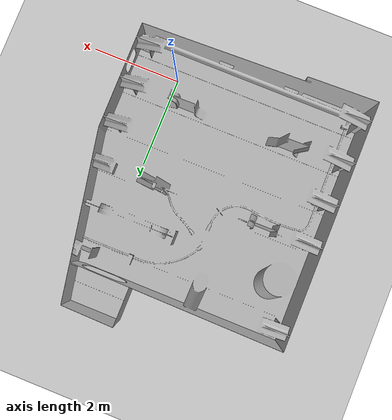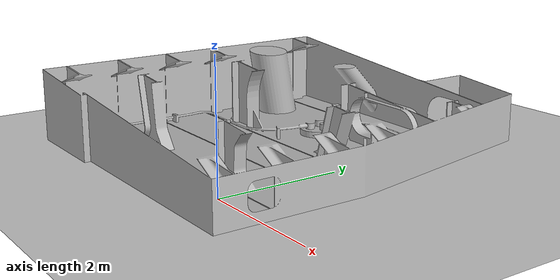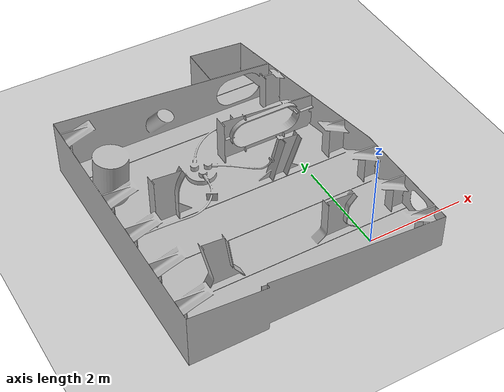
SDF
<sdf version="1.6">
 <world name="default">
  <model name="ground_plane">
   <static>1</static>
   <link name="link">
    <collision name="collision">
     <geometry><plane><normal>0 0 1</normal><size>100 100</size></plane></geometry>
     <surface><friction><ode><mu>100</mu><mu2>50</mu2></ode></friction></surface>
    </collision>
    <visual name="visual">
     <cast_shadows>0</cast_shadows>
     <geometry><plane><normal>0 0 1</normal><size>100 100</size></plane></geometry>
     <material>
      <script><uri>file://media/materials/scripts/gazebo.material</uri><name>Gazebo/Grey</name></script>
     </material>
    </visual>
   </link>
  </model>
  <light name="sun" type="directional">
   <pose>0 0 10 0 -0 0</pose>
   <diffuse>0.8 0.8 0.8 1</diffuse>
   <specular>0.2 0.2 0.2 1</specular>
   <attenuation>
    <range>1000</range>
    <constant>0.9</constant>
    <linear>0.01</linear>
    <quadratic>0.001</quadratic>
   </attenuation>
   <direction>-0.5 0.1 -0.9</direction>
  </light>
  <model name="Tank">
   <pose>-4.14381 -0.815504 -1.78228 0 -0 0</pose>
   <static>1</static>
   <link name="body">
    <visual name="visual">
     <geometry><mesh><uri>file://NAVSEA_TANK_FULL.STL</uri><scale>0.001 0.001 0.001</scale></mesh></geometry>
    </visual>
    <collision name="collision1">
     <geometry><mesh><uri>file://NAVSEA_TANK_FULL.STL</uri></mesh></geometry>
    </collision>
   </link>
  </model>
  <gravity>0 0 -9.8</gravity>
  <magnetic_field>6e-06 2.3e-05 -4.2e-05</magnetic_field>
  <atmosphere type="adiabatic"/>
  <physics name="default_physics" default="0" type="ode">
   <max_step_size>0.001</max_step_size>
   <real_time_factor>1</real_time_factor>
   <real_time_update_rate>1000</real_time_update_rate>
  </physics>
  <scene><ambient>0.4 0.4 0.4 1</ambient><background>0.7 0.7 0.7 1</background><shadows>1</shadows></scene>
  <audio><device>default</device></audio>
  <spherical_coordinates>
   <surface_model>EARTH_WGS84</surface_model>
   <latitude_deg>0</latitude_deg>
   <longitude_deg>0</longitude_deg>
   <elevation>0</elevation>
   <heading_deg>0</heading_deg>
  </spherical_coordinates>
 </world>
</sdf>
